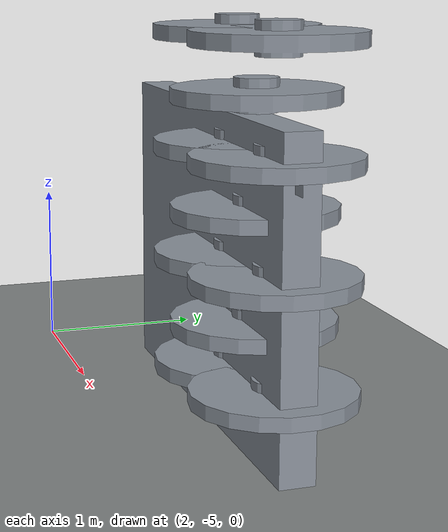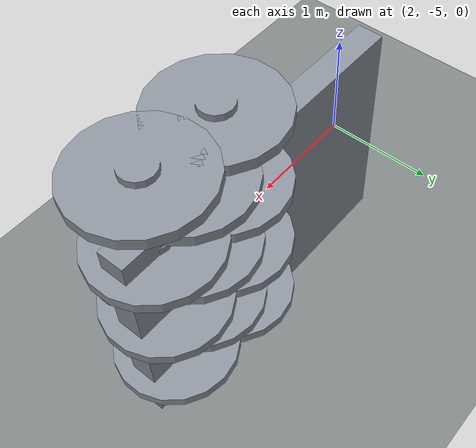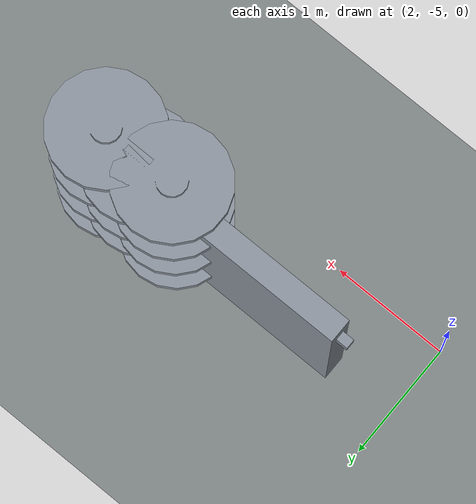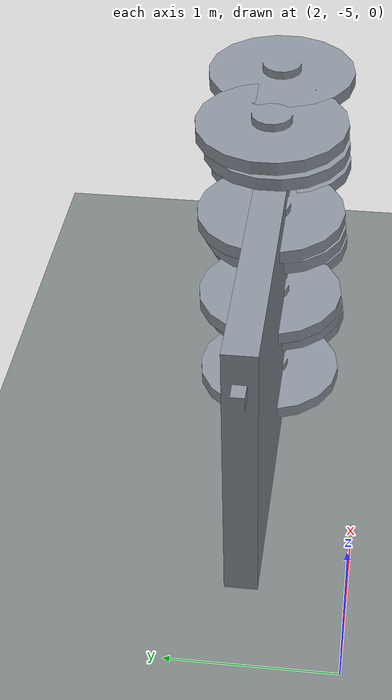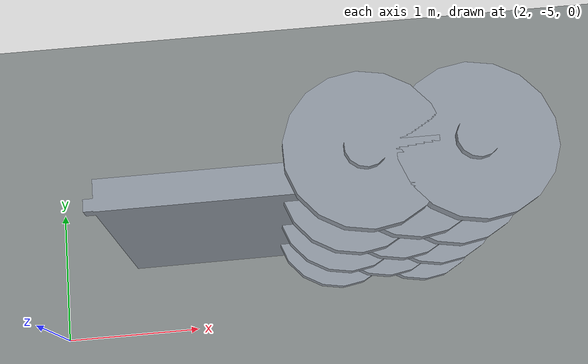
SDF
<sdf version="1.9">
 <world name="default">
  <model name="ground_plane">
   <static>true</static>
   <link name="link">
    <collision name="collision">
     <geometry><plane><normal>0 0 1</normal><size>160 140</size></plane></geometry>
     <surface><friction><ode><mu>1.0</mu><mu2>1.0</mu2></ode></friction></surface>
    </collision>
    <visual name="visual">
     <geometry><plane><normal>0 0 1</normal><size>160 140</size></plane></geometry>
     <material><diffuse>0.50 0.52 0.52 1</diffuse><ambient>0.50 0.52 0.52 1</ambient></material>
    </visual>
   </link>
  </model>
  <model name="wheel_valve_wall">
   <static>true</static>
   <link name="wall_link">
    <inertial>
     <pose>0.6096 0.00476 1.2192 0 -0 0</pose>
     <mass>2.5</mass>
     <inertia><ixx>1.23873</ixx><ixy>0</ixy><ixz>0</ixz><iyy>1.54838</iyy><iyz>0</iyz><izz>0.309696</izz></inertia>
    </inertial>
    <collision name="collision">
     <pose>0.6096 0.00476 1.2192 0 -0 0</pose>
     <geometry><box><size>1.2192 0.00952 2.4384</size></box></geometry>
    </collision>
    <visual name="visual">
     <pose>-0.004536 -0.003572 0 0 -0 0</pose>
     <geometry>
      <mesh>
       <uri>file:///home/k/clb_ws_jazzy/src/zebrat/gazebo_models/drc_practice_valve_wall/meshes/five_dice_wall.dae</uri>
      </mesh>
     </geometry>
     <material><diffuse>0.55 0.58 0.62 1</diffuse><ambient>0.55 0.58 0.62 1</ambient></material>
    </visual>
    <collision name="simple_collision">
     <pose>0 0 1.3 0 0 0</pose>
     <geometry><box><size>1.5 0.8 2.6</size></box></geometry>
     <surface><friction><ode><mu>1.0</mu><mu2>1.0</mu2></ode></friction></surface>
    </collision>
   </link>
   <link name="valve_0_handle">
    <pose>0.919587 -0.0092 0.385 0 -0 1.57</pose>
    <inertial>
     <mass>7.9917</mass>
     <pose>0.05 0 0 0 -0 0</pose>
     <inertia><ixx>0.0689</ixx><ixy>0</ixy><ixz>0</ixz><iyy>0.0353</iyy><iyz>0</iyz><izz>0.0353</izz></inertia>
    </inertial>
    <visual name="visual">
     <geometry>
      <mesh>
       <uri>file:///home/k/clb_ws_jazzy/src/zebrat/gazebo_models/drc_practice_wheel_valve/meshes/valve_wheel.dae</uri>
      </mesh>
     </geometry>
     <material><diffuse>0.55 0.58 0.62 1</diffuse><ambient>0.55 0.58 0.62 1</ambient></material>
    </visual>
   </link>
   <link name="valve_1_handle">
    <pose>0.919587 -0.0092 0.9954 0 -0 1.57</pose>
    <inertial>
     <mass>7.9917</mass>
     <pose>0.05 0 0 0 -0 0</pose>
     <inertia><ixx>0.0689</ixx><ixy>0</ixy><ixz>0</ixz><iyy>0.0353</iyy><iyz>0</iyz><izz>0.0353</izz></inertia>
    </inertial>
    <visual name="visual">
     <geometry>
      <mesh>
       <uri>file:///home/k/clb_ws_jazzy/src/zebrat/gazebo_models/drc_practice_wheel_valve/meshes/valve_wheel.dae</uri>
      </mesh>
     </geometry>
     <material><diffuse>0.55 0.58 0.62 1</diffuse><ambient>0.55 0.58 0.62 1</ambient></material>
    </visual>
   </link>
   <link name="valve_2_handle">
    <pose>0.919587 -0.0092 1.6058 0 -0 1.57</pose>
    <inertial>
     <mass>7.9917</mass>
     <pose>0.05 0 0 0 -0 0</pose>
     <inertia><ixx>0.0689</ixx><ixy>0</ixy><ixz>0</ixz><iyy>0.0353</iyy><iyz>0</iyz><izz>0.0353</izz></inertia>
    </inertial>
    <visual name="visual">
     <geometry>
      <mesh>
       <uri>file:///home/k/clb_ws_jazzy/src/zebrat/gazebo_models/drc_practice_wheel_valve/meshes/valve_wheel.dae</uri>
      </mesh>
     </geometry>
     <material><diffuse>0.55 0.58 0.62 1</diffuse><ambient>0.55 0.58 0.62 1</ambient></material>
    </visual>
   </link>
   <link name="valve_3_handle">
    <pose>0.919587 -0.0092 2.2162 0 -0 1.57</pose>
    <inertial>
     <mass>7.9917</mass>
     <pose>0.05 0 0 0 -0 0</pose>
     <inertia><ixx>0.0689</ixx><ixy>0</ixy><ixz>0</ixz><iyy>0.0353</iyy><iyz>0</iyz><izz>0.0353</izz></inertia>
    </inertial>
    <visual name="visual">
     <geometry>
      <mesh>
       <uri>file:///home/k/clb_ws_jazzy/src/zebrat/gazebo_models/drc_practice_wheel_valve/meshes/valve_wheel.dae</uri>
      </mesh>
     </geometry>
     <material><diffuse>0.55 0.58 0.62 1</diffuse><ambient>0.55 0.58 0.62 1</ambient></material>
    </visual>
   </link>
   <link name="valve_4_handle">
    <pose>0.614335 -0.0092 0.6896 0 -0 1.57</pose>
    <inertial>
     <mass>7.9917</mass>
     <pose>0.05 0 0 0 -0 0</pose>
     <inertia><ixx>0.0689</ixx><ixy>0</ixy><ixz>0</ixz><iyy>0.0353</iyy><iyz>0</iyz><izz>0.0353</izz></inertia>
    </inertial>
    <visual name="visual">
     <geometry>
      <mesh>
       <uri>file:///home/k/clb_ws_jazzy/src/zebrat/gazebo_models/drc_practice_wheel_valve/meshes/valve_wheel.dae</uri>
      </mesh>
     </geometry>
     <material><diffuse>0.55 0.58 0.62 1</diffuse><ambient>0.55 0.58 0.62 1</ambient></material>
    </visual>
   </link>
   <link name="valve_5_handle">
    <pose>0.614335 -0.0092 1.3 0 -0 1.57</pose>
    <inertial>
     <mass>7.9917</mass>
     <pose>0.05 0 0 0 -0 0</pose>
     <inertia><ixx>0.0689</ixx><ixy>0</ixy><ixz>0</ixz><iyy>0.0353</iyy><iyz>0</iyz><izz>0.0353</izz></inertia>
    </inertial>
    <visual name="visual">
     <geometry>
      <mesh>
       <uri>file:///home/k/clb_ws_jazzy/src/zebrat/gazebo_models/drc_practice_wheel_valve/meshes/valve_wheel.dae</uri>
      </mesh>
     </geometry>
     <material><diffuse>0.55 0.58 0.62 1</diffuse><ambient>0.55 0.58 0.62 1</ambient></material>
    </visual>
   </link>
   <link name="valve_6_handle">
    <pose>0.614335 -0.0092 1.9104 0 -0 1.57</pose>
    <inertial>
     <mass>7.9917</mass>
     <pose>0.05 0 0 0 -0 0</pose>
     <inertia><ixx>0.0689</ixx><ixy>0</ixy><ixz>0</ixz><iyy>0.0353</iyy><iyz>0</iyz><izz>0.0353</izz></inertia>
    </inertial>
    <visual name="visual">
     <geometry>
      <mesh>
       <uri>file:///home/k/clb_ws_jazzy/src/zebrat/gazebo_models/drc_practice_wheel_valve/meshes/valve_wheel.dae</uri>
      </mesh>
     </geometry>
     <material><diffuse>0.55 0.58 0.62 1</diffuse><ambient>0.55 0.58 0.62 1</ambient></material>
    </visual>
   </link>
   <link name="valve_7_handle">
    <pose>0.309083 -0.0092 0.385 0 -0 1.57</pose>
    <inertial>
     <mass>7.9917</mass>
     <pose>0.05 0 0 0 -0 0</pose>
     <inertia><ixx>0.0689</ixx><ixy>0</ixy><ixz>0</ixz><iyy>0.0353</iyy><iyz>0</iyz><izz>0.0353</izz></inertia>
    </inertial>
    <visual name="visual">
     <geometry>
      <mesh>
       <uri>file:///home/k/clb_ws_jazzy/src/zebrat/gazebo_models/drc_practice_wheel_valve/meshes/valve_wheel.dae</uri>
      </mesh>
     </geometry>
     <material><diffuse>0.55 0.58 0.62 1</diffuse><ambient>0.55 0.58 0.62 1</ambient></material>
    </visual>
   </link>
   <link name="valve_8_handle">
    <pose>0.309083 -0.0092 0.9954 0 -0 1.57</pose>
    <inertial>
     <mass>7.9917</mass>
     <pose>0.05 0 0 0 -0 0</pose>
     <inertia><ixx>0.0689</ixx><ixy>0</ixy><ixz>0</ixz><iyy>0.0353</iyy><iyz>0</iyz><izz>0.0353</izz></inertia>
    </inertial>
    <visual name="visual">
     <geometry>
      <mesh>
       <uri>file:///home/k/clb_ws_jazzy/src/zebrat/gazebo_models/drc_practice_wheel_valve/meshes/valve_wheel.dae</uri>
      </mesh>
     </geometry>
     <material><diffuse>0.55 0.58 0.62 1</diffuse><ambient>0.55 0.58 0.62 1</ambient></material>
    </visual>
   </link>
   <link name="valve_9_handle">
    <pose>0.309083 -0.0092 1.6058 0 -0 1.57</pose>
    <inertial>
     <mass>7.9917</mass>
     <pose>0.05 0 0 0 -0 0</pose>
     <inertia><ixx>0.0689</ixx><ixy>0</ixy><ixz>0</ixz><iyy>0.0353</iyy><iyz>0</iyz><izz>0.0353</izz></inertia>
    </inertial>
    <visual name="visual">
     <geometry>
      <mesh>
       <uri>file:///home/k/clb_ws_jazzy/src/zebrat/gazebo_models/drc_practice_wheel_valve/meshes/valve_wheel.dae</uri>
      </mesh>
     </geometry>
     <material><diffuse>0.55 0.58 0.62 1</diffuse><ambient>0.55 0.58 0.62 1</ambient></material>
    </visual>
   </link>
   <link name="valve_10_handle">
    <pose>0.309083 -0.0092 2.2162 0 -0 1.57</pose>
    <inertial>
     <mass>7.9917</mass>
     <pose>0.05 0 0 0 -0 0</pose>
     <inertia><ixx>0.0689</ixx><ixy>0</ixy><ixz>0</ixz><iyy>0.0353</iyy><iyz>0</iyz><izz>0.0353</izz></inertia>
    </inertial>
    <visual name="visual">
     <geometry>
      <mesh>
       <uri>file:///home/k/clb_ws_jazzy/src/zebrat/gazebo_models/drc_practice_wheel_valve/meshes/valve_wheel.dae</uri>
      </mesh>
     </geometry>
     <material><diffuse>0.55 0.58 0.62 1</diffuse><ambient>0.55 0.58 0.62 1</ambient></material>
    </visual>
   </link>
   <pose>3.81093 -4.37427 0 0 -0 0</pose>
  </model>
 </world>
</sdf>
